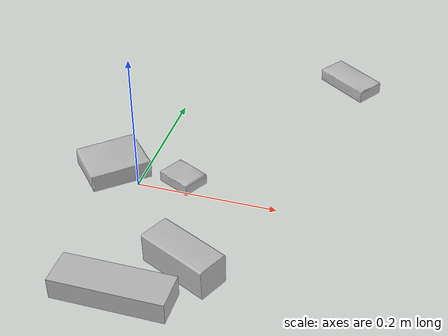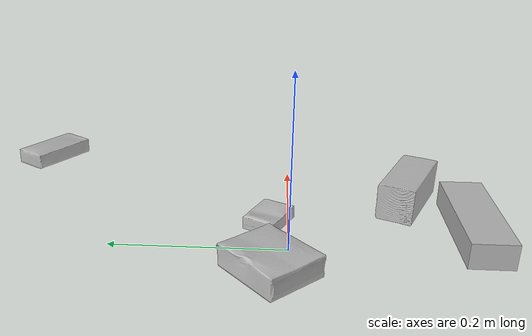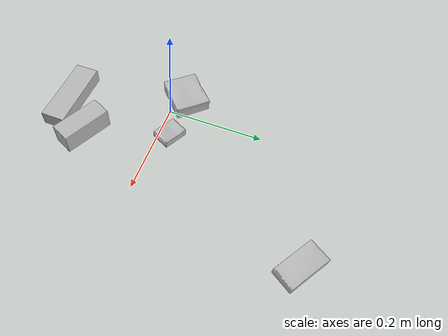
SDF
<sdf version="1.4">
  <world name="default">
    <light name="light1" type="point">
      <pose>0 0 1 0 0 0</pose>
      <diffuse>3 3 3 1</diffuse>
      <specular>3 3 3 1</specular>
    </light>
    <light name="light2" type="point">
      <pose>0 0.5 2 0 0 0</pose>
      <diffuse>1 1 1 1</diffuse>
      <specular>1 1 1 1</specular>
    </light>
    <light name="light3" type="point">
      <pose>0 0.5 2 0 0 0</pose>
      <diffuse>3 3 3 1</diffuse>
      <specular>3 3 3 1</specular>
    </light>
    <scene>
      <ambient>0.7 0.7 0.7</ambient>
    </scene>
    <model name="box1">
      <link name="link_box1">
        <collision name="default">
          <geometry>
            <mesh>
              <uri>model://sugar_box/collision_meshes/collision.obj</uri>
              <scale>0.5 0.5 0.5</scale>
            </mesh>
          </geometry>
          <surface>
            <friction>
              <ode>
                <mu>0.5</mu>
                <mu2>0.5</mu2>
              </ode>
            </friction>
          <contact>
        <ode>
            <max_vel>0</max_vel>
            <min_depth>0.0001</min_depth>
            <kp>1e8</kp>
        </ode>
    </contact></surface>
        </collision>
        <visual name="default">
          <geometry>
            <mesh>
              <uri>model://sugar_box/visual_meshes/visual.dae</uri>
              <scale>0.5 0.5 0.5</scale>
            </mesh>
          </geometry>
        </visual>
        <inertial>
          <mass>0.05016465485095978</mass>
          <pose>0.0005171863595023751 1.924554817378521e-05 -0.0001818240125430748 -0.00040462615463102695 0.0010506635220671036 0.0026153792546614123</pose>
          <inertia>
            <ixx>1.0449262e-05</ixx>
            <iyy>3.3774166e-05</iyy>
            <izz>4.0431696e-05</izz>
            <ixy>0</ixy>
            <ixz>0</ixz>
            <iyz>0</iyz>
          </inertia>
        </inertial>
      </link>
      <pose>0.2367348074913025 0.33322614431381226 0.011399302631616592 0.0007755941870875657 -0.023433305223958846 2.5662967525627463</pose>
    </model>
    <model name="box2">
      <link name="link_box2">
        <collision name="default">
          <geometry>
            <mesh>
              <uri>model://cracker_box/collision_meshes/collision.obj</uri>
              <scale>0.25 0.25 0.25</scale>
            </mesh>
          </geometry>
          <surface>
            <friction>
              <ode>
                <mu>0.5</mu>
                <mu2>0.5</mu2>
              </ode>
            </friction>
          <contact>
        <ode>
            <max_vel>0</max_vel>
            <min_depth>0.0001</min_depth>
            <kp>1e8</kp>
        </ode>
    </contact></surface>
        </collision>
        <visual name="default">
          <geometry>
            <mesh>
              <uri>model://cracker_box/visual_meshes/visual.dae</uri>
              <scale>0.25 0.25 0.25</scale>
            </mesh>
          </geometry>
        </visual>
        <inertial>
          <mass>0.05325852707028389</mass>
          <pose>0.0002366033149883151 6.358561950037256e-05 -0.0004257383698131889 -0.000316207624135088 -0.011106486806293444 0.0025467950014945295</pose>
          <inertia>
            <ixx>8.46662e-06</ixx>
            <iyy>1.3980052e-05</iyy>
            <izz>1.995082e-05</izz>
            <ixy>0</ixy>
            <ixz>0</ixz>
            <iyz>0</iyz>
          </inertia>
        </inertial>
      </link>
      <pose>0.059099432080984116 0.02262175641953945 0.009120449423789978 -0.011787913226049487 -0.0073671775079837 -0.47506599719988446</pose>
    </model>
    <model name="box3">
      <link name="link_box3">
        <collision name="default">
          <geometry>
            <mesh>
              <uri>model://wood_block/collision_meshes/collision.obj</uri>
              <scale>0.5 0.5 0.5</scale>
            </mesh>
          </geometry>
          <surface>
            <friction>
              <ode>
                <mu>0.5</mu>
                <mu2>0.5</mu2>
              </ode>
            </friction>
          <contact>
        <ode>
            <max_vel>0</max_vel>
            <min_depth>0.0001</min_depth>
            <kp>1e8</kp>
        </ode>
    </contact></surface>
        </collision>
        <visual name="default">
          <geometry>
            <mesh>
              <uri>model://wood_block/visual_meshes/visual.dae</uri>
              <scale>0.5 0.5 0.5</scale>
            </mesh>
          </geometry>
        </visual>
        <inertial>
          <mass>0.24977724254131317</mass>
          <pose>-2.9066577553749084e-06 -0.00028540476341731846 0.00013204291462898254 -0.05220975529066727 -0.005192695547513155 -0.006861377927637377</pose>
          <inertia>
            <ixx>8.355995e-05</ixx>
            <iyy>0.00026396586</iyy>
            <izz>0.00026297852</izz>
            <ixy>0</ixy>
            <ixz>0</ixz>
            <iyz>0</iyz>
          </inertia>
        </inertial>
      </link>
      <pose>0.11794451624155045 -0.1449868083000183 0.0226292721927166 -0.005208472326843909 0.0057187188781422545 2.7013791892640238</pose>
    </model>
    <model name="box4">
      <link name="link_box4">
        <collision name="default">
          <geometry>
            <mesh>
              <uri>model://gelatin_box/collision_meshes/collision.obj</uri>
              <scale>1.0 1.0 1.0</scale>
            </mesh>
          </geometry>
          <surface>
            <friction>
              <ode>
                <mu>0.5</mu>
                <mu2>0.5</mu2>
              </ode>
            </friction>
          <contact>
        <ode>
            <max_vel>0</max_vel>
            <min_depth>0.0001</min_depth>
            <kp>1e8</kp>
        </ode>
    </contact></surface>
        </collision>
        <visual name="default">
          <geometry>
            <mesh>
              <uri>model://gelatin_box/visual_meshes/visual.dae</uri>
              <scale>1.0 1.0 1.0</scale>
            </mesh>
          </geometry>
        </visual>
        <inertial>
          <mass>0.142814502120018</mass>
          <pose>0.0004319618456065655 0.00011156871187267825 -0.0003640321083366871 -0.0010503719804291966 -0.004755819155973465 0.01644055947187314</pose>
          <inertia>
            <ixx>0.000100815385</ixx>
            <iyy>7.20119e-05</iyy>
            <izz>0.00015346348</izz>
            <ixy>0</ixy>
            <ixz>0</ixz>
            <iyz>0</iyz>
          </inertia>
        </inertial>
      </link>
      <pose>-0.043691761791706085 0.019519181922078133 0.015168317593634129 0.005597427351125801 -0.007304569938077996 2.295905943756154</pose>
    </model>
    <model name="box5">
      <link name="link_box5">
        <collision name="default">
          <geometry>
            <mesh>
              <uri>model://jenga/collision_meshes/collision.obj</uri>
              <scale>1.0 1.0 1.0</scale>
            </mesh>
          </geometry>
          <surface>
            <friction>
              <ode>
                <mu>0.5</mu>
                <mu2>0.5</mu2>
              </ode>
            </friction>
          <contact>
        <ode>
            <max_vel>0</max_vel>
            <min_depth>0.0001</min_depth>
            <kp>1e8</kp>
        </ode>
    </contact></surface>
        </collision>
        <visual name="default">
          <geometry>
            <mesh>
              <uri>model://jenga/visual_meshes/visual.dae</uri>
              <scale>1.0 1.0 1.0</scale>
            </mesh>
          </geometry>
        </visual>
        <inertial>
          <mass>0.11303283274173737</mass>
          <pose>-2.502855807051674e-07 -0.00010250010382151231 -4.0923401684267446e-05 0.0 -7.342155186052628e-07 0.0</pose>
          <inertia>
            <ixx>3.127893e-05</ixx>
            <iyy>0.00021194515</iyy>
            <izz>0.00022626946</izz>
            <ixy>0</ixy>
            <ixz>0</ixz>
            <iyz>0</iyz>
          </inertia>
        </inertial>
      </link>
      <pose>0.050765763968229294 -0.2095055878162384 0.014999995008111 1.8405497536140374e-08 -5.0401715232546155e-11 0.00014624375087184092</pose>
    </model>
  <physics type="ode">
      <max_contacts>50</max_contacts>
      <ode>
        <solver>
          <type>quick</type>
          <iters>75</iters>
        </solver>
        <constraints>
          <contact_max_correcting_vel>0</contact_max_correcting_vel>
          <contact_surface_layer>0</contact_surface_layer>
        </constraints>
      </ode>
    </physics></world>
</sdf>
